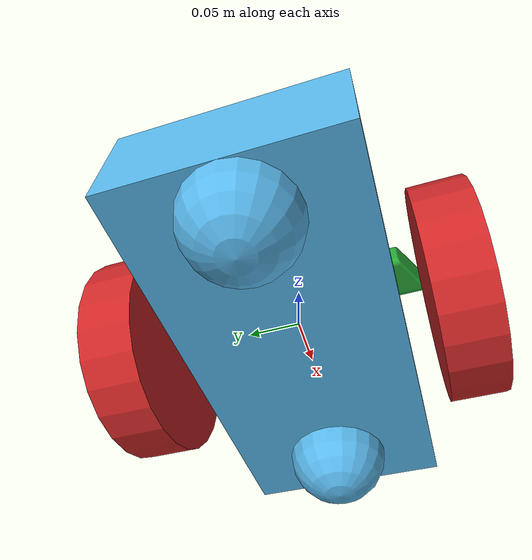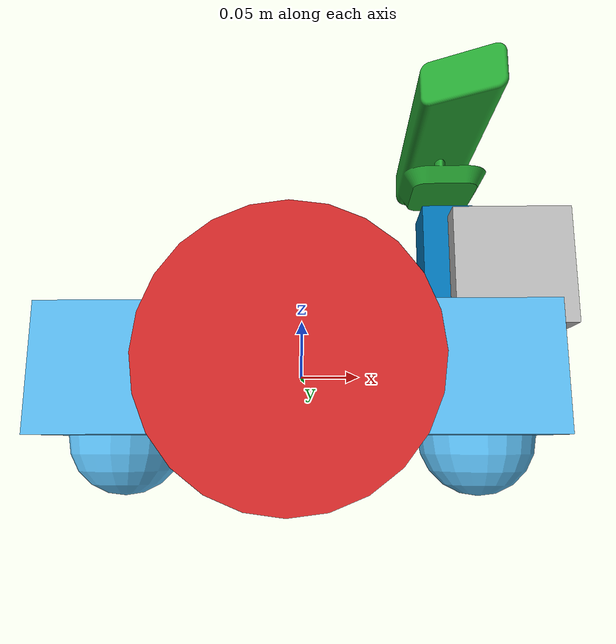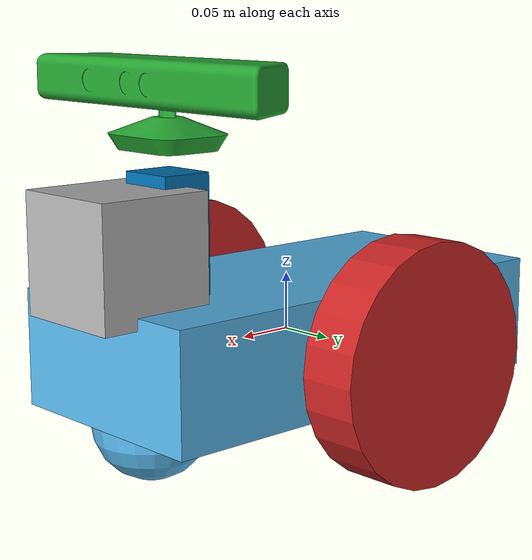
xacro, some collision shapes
<?xml version='1.0'?>

<robot name="udacity_bot" xmlns:xacro="http://www.ros.org/wiki/xacro">

  <xacro:include filename="$(find udacity_bot)/urdf/udacity_bot.gazebo" />

  <!-- parameters -->
  <xacro:property name="rack_h" value="0.1"/>
  <xacro:property name="rack_x" value="0.13"/>
  <xacro:property name="cam_x" value="0.16"/>
  <xacro:property name="cam_z" value="${rack_h}"/>

  <link name="robot_footprint"></link>

  <joint name="robot_footprint_joint" type="fixed">
    <origin xyz="0 0 0" rpy="0 0 0" />
    <parent link="robot_footprint"/>
    <child link="chassis" />
  </joint>

  <link name='chassis'>
    <pose>0 0 0.1 0 0 0</pose>

    <inertial>
      <mass value="15.0"/>
      <origin xyz="0.0 0 0" rpy=" 0 0 0"/>
      <inertia
          ixx="0.1" ixy="0" ixz="0"
          iyy="0.1" iyz="0"
          izz="0.1"
      />
    </inertial>

    <collision name='collision'>
      <origin xyz="0 0 0" rpy=" 0 0 0"/>
      <geometry>
        <box size=".4 .2 .1"/>
      </geometry>
    </collision>

    <visual name='chassis_visual'>
      <origin xyz="0 0 0" rpy=" 0 0 0"/>
      <geometry>
        <box size=".4 .2 .1"/>
      </geometry>
    </visual>

    <collision name='back_caster_collision'>
      <origin xyz="-0.15 0 -0.05" rpy=" 0 0 0"/>
      <geometry>
        <sphere radius="0.0499"/>
      </geometry>
    </collision>

    <visual name='back_caster_visual'>
      <origin xyz="-0.15 0 -0.05" rpy=" 0 0 0"/>
      <geometry>
        <sphere radius="0.05"/>
      </geometry>
    </visual>

    <collision name='front_caster_collision'>
      <origin xyz="0.15 0 -0.05" rpy=" 0 0 0"/>
      <geometry>
        <sphere radius="0.0499"/>
      </geometry>
    </collision>

    <visual name='front_caster_visual'>
      <origin xyz="0.15 0 -0.05" rpy=" 0 0 0"/>
      <geometry>
        <sphere radius="0.05"/>
      </geometry>
    </visual>

  </link>

  <link name="left_wheel">
    <visual name="left_wheel_visual">
      <origin xyz="0 0 0" rpy="0 1.5707 1.5707"/>
      <geometry>
        <cylinder radius="0.1" length="0.05"/>
      </geometry>
      <material name="red"/>
    </visual>

    <collision name="left_wheel_collision">
      <origin xyz="0 0 0" rpy="0 1.5707 1.5707"/>
      <geometry>
        <cylinder radius="0.1" length="0.05"/>
      </geometry>
    </collision>

    <inertial>
      <mass value="5.0"/>
      <origin xyz="0 0 0" rpy="0 0 0"/>
      <inertia
          ixx="0.1" ixy="0" ixz="0"
          iyy="0.1" iyz="0"
          izz="0.1"
      />
    </inertial>
  </link>

  <joint type="continuous" name="left_wheel_hinge">
    <origin xyz="0 0.15 0" rpy="0 0 0"/>
    <child link="left_wheel"/>
    <parent link="chassis"/>
    <axis xyz="0 1 0" rpy="0 0 0"/>
    <limit effort="10000" velocity="1000"/>
    <dynamics damping="1.0" friction="1.0"/>
  </joint>

  <link name="right_wheel">
    <visual name="right_wheel_visual">
      <origin xyz="0 0 0" rpy="0 1.5707 1.5707"/>
      <geometry>
        <cylinder radius="0.1" length="0.05"/>
      </geometry>
      <material name="red"/>
    </visual>

    <collision name="right_wheel_collision">
      <origin xyz="0 0 0" rpy="0 1.5707 1.5707"/>
      <geometry>
        <cylinder radius="0.1" length="0.05"/>
      </geometry>
    </collision>

    <inertial>
      <mass value="5.0"/>
      <origin xyz="0 0 0" rpy="0 0 0"/>
      <inertia
          ixx="0.1" ixy="0" ixz="0"
          iyy="0.1" iyz="0"
          izz="0.1"
      />
    </inertial>
  </link>

  <joint type="continuous" name="right_wheel_hinge">
    <origin xyz="0 -0.15 0" rpy="0 0 0"/>
    <child link="right_wheel"/>
    <parent link="chassis"/>
    <axis xyz="0 1 0" rpy="0 0 0"/>
    <limit effort="10000" velocity="1000"/>
    <dynamics damping="1.0" friction="1.0"/>
  </joint>

  <!-- CAMERA RACK -->
  <link name='rack'>
    <pose>0 0 0 0 0 0</pose>

    <inertial>
      <mass value="0.5"/>
      <origin xyz="0.0 0 0" rpy=" 0 0 0"/>
      <inertia
          ixx="0.0001" ixy="0" ixz="0"
          iyy="0.0001" iyz="0"
          izz="0.0001"
      />
    </inertial>

    <collision name='collision'>
      <origin xyz="0 0 0" rpy=" 0 0 0"/>
      <geometry>
        <box size=".04 .05 ${rack_h}"/>
      </geometry>
    </collision>

    <visual name='chassis_visual'>
      <origin xyz="0 0 0" rpy=" 0 0 0"/>
      <geometry>
        <box size=".044 .05 ${rack_h}"/>
      </geometry>
    </visual>
  </link>

  <joint name="rack_joint" type="fixed">
    <origin xyz="${rack_x} 0 0.1" rpy="0 0 0" />
    <parent link="chassis"/>
    <child link="rack" />
  </joint>

  <!-- CAMERA -->
  <link name="camera">
    <visual name="camera_visual">
      <origin xyz="0 0 0" rpy="0 0 0"/>
      <geometry>
       <mesh filename="package://udacity_bot/meshes/kinect.dae"/>
      </geometry>
      <material name="green"/>
    </visual>

    <collision name="camera_collision">
      <origin xyz="0 0 0" rpy="0 0 0"/>
      <geometry>
        <box size=".05 .05 .05"/>
      </geometry>
    </collision>

    <inertial>
     <mass value="0.1"/>
     <origin xyz="0 0 0" rpy="0 0 0"/>
     <inertia
        ixx="1e-6" ixy="0" ixz="0"
        iyy="1e-6" iyz="0"
        izz="1e-6"
     />
    </inertial>
  </link>

  <joint type="fixed" name="camera_joint">
   <origin xyz="${cam_x} 0 0.22" rpy="0 0 0"/>
   <child link="camera"/>
   <parent link="chassis"/>
  </joint>

  <!-- camera rgbd frame -->
  <link name="camera_rgbd_frame"></link>

  <joint type="fixed" name="camera_rgbd_frame_joint">
  	<origin xyz="0 0 0" rpy="${-pi/2} 0 ${-pi/2}"/>
  	<child link="camera_rgbd_frame"/>
  	<parent link="camera"/>
  </joint>

  <link name="hokuyo">
    <visual name="visual">
      <origin xyz="0 0 0" rpy="0 0 0"/>
      <geometry>
        <mesh filename="package://udacity_bot/meshes/hokuyo.dae"/>
      </geometry>
    </visual>

    <collision name="hokuyo_collision">
      <origin xyz="0 0 0" rpy="0 0 0"/>
      <geometry>
        <box size=".1 .1 .1"/>
      </geometry>
    </collision>

    <inertial>
      <mass value="0.1"/>
      <origin xyz="0.0 0 0" rpy=" 0 0 0"/>
      <inertia
          ixx="1e-6" ixy="0" ixz="0"
          iyy="1e-6" iyz="0"
          izz="1e-6"
      />
    </inertial>
  </link>

  <joint type="fixed" name="hokuyo_joint">
    <origin xyz=".18 0 .09" rpy="0 0 0"/>
    <child link="hokuyo"/>
    <parent link="chassis"/>
  </joint>

</robot>
